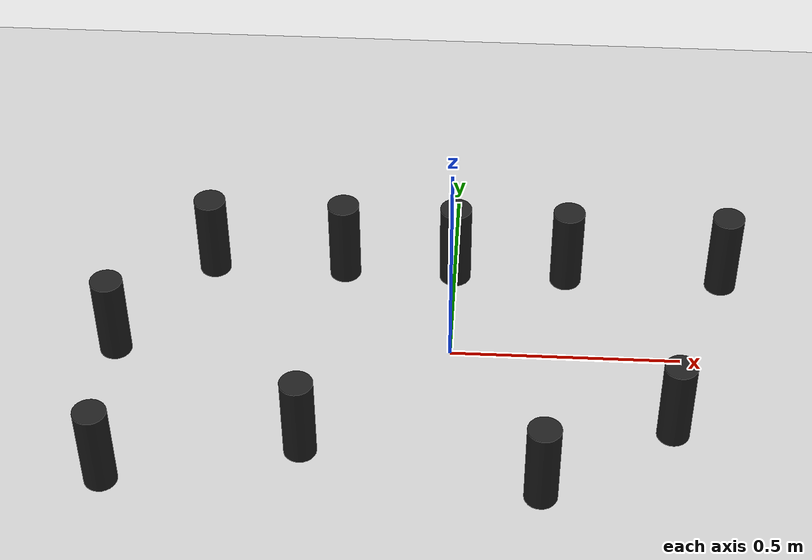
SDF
<sdf version="1.6">
 <world name="default">
  <light name="sun" type="directional">
   <pose>0 0 10 0 -0 0</pose>
   <diffuse>0.8 0.8 0.8 1</diffuse>
   <specular>0.2 0.2 0.2 1</specular>
   <attenuation>
    <range>1000</range>
    <constant>0.9</constant>
    <linear>0.01</linear>
    <quadratic>0.001</quadratic>
   </attenuation>
   <direction>-0.5 0.1 -0.9</direction>
  </light>
  <model name="ground_plane">
   <pose>0.6 -0.25 0 0 -0 0</pose>
   <static>1</static>
   <link name="link">
    <collision name="collision">
     <geometry><plane><normal>0 0 1</normal><size>100 100</size></plane></geometry>
     <surface>
      <contact><collide_bitmask>65535</collide_bitmask></contact>
      <friction><ode><mu>100</mu><mu2>50</mu2></ode></friction>
     </surface>
    </collision>
    <visual name="visual">
     <cast_shadows>0</cast_shadows>
     <geometry><plane><normal>0 0 1</normal><size>100 100</size></plane></geometry>
     <material>
      <script><uri>file://media/materials/scripts/gazebo.material</uri><name>Gazebo/Grey</name></script>
     </material>
    </visual>
   </link>
  </model>
  <gravity>0 0 -9.8</gravity>
  <magnetic_field>6e-06 2.3e-05 -4.2e-05</magnetic_field>
  <atmosphere type="adiabatic"/>
  <physics name="default_physics" default="0" type="ode">
   <max_step_size>0.001</max_step_size>
   <real_time_factor>1</real_time_factor>
   <real_time_update_rate>1000</real_time_update_rate>
  </physics>
  <scene><ambient>0.4 0.4 0.4 1</ambient><background>0.7 0.7 0.7 1</background><shadows>1</shadows></scene>
  <audio><device>default</device></audio>
  <spherical_coordinates>
   <surface_model>EARTH_WGS84</surface_model>
   <latitude_deg>0</latitude_deg>
   <longitude_deg>0</longitude_deg>
   <elevation>0</elevation>
   <heading_deg>0</heading_deg>
  </spherical_coordinates>
  <model name="cylinder">
   <link name="link">
    <inertial>
     <mass>1</mass>
     <inertia><ixx>0.145833</ixx><ixy>0</ixy><ixz>0</ixz><iyy>0.145833</iyy><iyz>0</iyz><izz>0.125</izz></inertia>
    </inertial>
    <visual name="visual">
     <geometry><cylinder><radius>0.035</radius><length>0.2</length></cylinder></geometry>
     <material>
      <script><name>Gazebo/Black</name><uri>file://media/materials/scripts/gazebo.material</uri></script>
      <shader type="vertex"><normal_map>__default__</normal_map></shader>
      <ambient>0.3 0.3 0.3 1</ambient>
      <diffuse>0.7 0.7 0.7 1</diffuse>
      <specular>0.01 0.01 0.01 1</specular>
      <emissive>0 0 0 1</emissive>
     </material>
    </visual>
    <collision name="collision">
     <geometry><cylinder><radius>0.035</radius><length>0.2</length></cylinder></geometry>
     <surface>
      <friction>
       <ode><mu>1</mu><mu2>1</mu2><fdir1>0 0 0</fdir1><slip1>0</slip1><slip2>0</slip2></ode>
       <torsional>
        <coefficient>1</coefficient>
        <patch_radius>0</patch_radius>
        <surface_radius>0</surface_radius>
        <use_patch_radius>1</use_patch_radius>
        <ode><slip>0</slip></ode>
       </torsional>
      </friction>
      <bounce><restitution_coefficient>0</restitution_coefficient><threshold>1e+06</threshold></bounce>
      <contact>
       <collide_without_contact>0</collide_without_contact>
       <collide_without_contact_bitmask>1</collide_without_contact_bitmask>
       <collide_bitmask>1</collide_bitmask>
       <ode>
        <soft_cfm>0</soft_cfm>
        <soft_erp>0.2</soft_erp>
        <kp>1e+13</kp>
        <kd>1</kd>
        <max_vel>0.01</max_vel>
        <min_depth>0</min_depth>
       </ode>
       <bullet>
        <split_impulse>1</split_impulse>
        <split_impulse_penetration_threshold>-0.01</split_impulse_penetration_threshold>
        <soft_cfm>0</soft_cfm>
        <soft_erp>0.2</soft_erp>
        <kp>1e+13</kp>
        <kd>1</kd>
       </bullet>
      </contact>
     </surface>
    </collision>
   </link>
   <static>1</static>
   <pose>0 0.25 0.1 0 -0 0</pose>
  </model>
  <model name="cylinder_clone">
   <link name="link">
    <inertial>
     <mass>1</mass>
     <inertia><ixx>0.145833</ixx><ixy>0</ixy><ixz>0</ixz><iyy>0.145833</iyy><iyz>0</iyz><izz>0.125</izz></inertia>
    </inertial>
    <visual name="visual">
     <geometry><cylinder><radius>0.035</radius><length>0.2</length></cylinder></geometry>
     <material>
      <script><name>Gazebo/Black</name><uri>file://media/materials/scripts/gazebo.material</uri></script>
      <shader type="vertex"><normal_map>__default__</normal_map></shader>
      <ambient>0.3 0.3 0.3 1</ambient>
      <diffuse>0.7 0.7 0.7 1</diffuse>
      <specular>0.01 0.01 0.01 1</specular>
      <emissive>0 0 0 1</emissive>
     </material>
    </visual>
    <collision name="collision">
     <geometry><cylinder><radius>0.035</radius><length>0.2</length></cylinder></geometry>
     <surface>
      <friction>
       <ode><mu>1</mu><mu2>1</mu2><fdir1>0 0 0</fdir1><slip1>0</slip1><slip2>0</slip2></ode>
       <torsional>
        <coefficient>1</coefficient>
        <patch_radius>0</patch_radius>
        <surface_radius>0</surface_radius>
        <use_patch_radius>1</use_patch_radius>
        <ode><slip>0</slip></ode>
       </torsional>
      </friction>
      <bounce><restitution_coefficient>0</restitution_coefficient><threshold>1e+06</threshold></bounce>
      <contact>
       <collide_without_contact>0</collide_without_contact>
       <collide_without_contact_bitmask>1</collide_without_contact_bitmask>
       <collide_bitmask>1</collide_bitmask>
       <ode>
        <soft_cfm>0</soft_cfm>
        <soft_erp>0.2</soft_erp>
        <kp>1e+13</kp>
        <kd>1</kd>
        <max_vel>0.01</max_vel>
        <min_depth>0</min_depth>
       </ode>
       <bullet>
        <split_impulse>1</split_impulse>
        <split_impulse_penetration_threshold>-0.01</split_impulse_penetration_threshold>
        <soft_cfm>0</soft_cfm>
        <soft_erp>0.2</soft_erp>
        <kp>1e+13</kp>
        <kd>1</kd>
       </bullet>
      </contact>
     </surface>
    </collision>
   </link>
   <static>1</static>
   <pose>0.25 0.25 0.1 0 -0 0</pose>
  </model>
  <model name="cylinder_clone_clone">
   <link name="link">
    <inertial>
     <mass>1</mass>
     <inertia><ixx>0.145833</ixx><ixy>0</ixy><ixz>0</ixz><iyy>0.145833</iyy><iyz>0</iyz><izz>0.125</izz></inertia>
    </inertial>
    <visual name="visual">
     <geometry><cylinder><radius>0.035</radius><length>0.2</length></cylinder></geometry>
     <material>
      <script><name>Gazebo/Black</name><uri>file://media/materials/scripts/gazebo.material</uri></script>
      <shader type="vertex"><normal_map>__default__</normal_map></shader>
      <ambient>0.3 0.3 0.3 1</ambient>
      <diffuse>0.7 0.7 0.7 1</diffuse>
      <specular>0.01 0.01 0.01 1</specular>
      <emissive>0 0 0 1</emissive>
     </material>
    </visual>
    <collision name="collision">
     <geometry><cylinder><radius>0.035</radius><length>0.2</length></cylinder></geometry>
     <surface>
      <friction>
       <ode><mu>1</mu><mu2>1</mu2><fdir1>0 0 0</fdir1><slip1>0</slip1><slip2>0</slip2></ode>
       <torsional>
        <coefficient>1</coefficient>
        <patch_radius>0</patch_radius>
        <surface_radius>0</surface_radius>
        <use_patch_radius>1</use_patch_radius>
        <ode><slip>0</slip></ode>
       </torsional>
      </friction>
      <bounce><restitution_coefficient>0</restitution_coefficient><threshold>1e+06</threshold></bounce>
      <contact>
       <collide_without_contact>0</collide_without_contact>
       <collide_without_contact_bitmask>1</collide_without_contact_bitmask>
       <collide_bitmask>1</collide_bitmask>
       <ode>
        <soft_cfm>0</soft_cfm>
        <soft_erp>0.2</soft_erp>
        <kp>1e+13</kp>
        <kd>1</kd>
        <max_vel>0.01</max_vel>
        <min_depth>0</min_depth>
       </ode>
       <bullet>
        <split_impulse>1</split_impulse>
        <split_impulse_penetration_threshold>-0.01</split_impulse_penetration_threshold>
        <soft_cfm>0</soft_cfm>
        <soft_erp>0.2</soft_erp>
        <kp>1e+13</kp>
        <kd>1</kd>
       </bullet>
      </contact>
     </surface>
    </collision>
   </link>
   <static>1</static>
   <pose>-0.25 0.25 0.1 0 -0 0</pose>
  </model>
  <model name="cylinder_clone_0_clone_clone_clone_clone">
   <link name="link">
    <inertial>
     <mass>1</mass>
     <inertia><ixx>0.145833</ixx><ixy>0</ixy><ixz>0</ixz><iyy>0.145833</iyy><iyz>0</iyz><izz>0.125</izz></inertia>
    </inertial>
    <visual name="visual">
     <geometry><cylinder><radius>0.035</radius><length>0.2</length></cylinder></geometry>
     <material>
      <script><name>Gazebo/Black</name><uri>file://media/materials/scripts/gazebo.material</uri></script>
      <shader type="vertex"><normal_map>__default__</normal_map></shader>
      <ambient>0.3 0.3 0.3 1</ambient>
      <diffuse>0.7 0.7 0.7 1</diffuse>
      <specular>0.01 0.01 0.01 1</specular>
      <emissive>0 0 0 1</emissive>
     </material>
    </visual>
    <collision name="collision">
     <geometry><cylinder><radius>0.035</radius><length>0.2</length></cylinder></geometry>
     <surface>
      <friction>
       <ode><mu>1</mu><mu2>1</mu2><fdir1>0 0 0</fdir1><slip1>0</slip1><slip2>0</slip2></ode>
       <torsional>
        <coefficient>1</coefficient>
        <patch_radius>0</patch_radius>
        <surface_radius>0</surface_radius>
        <use_patch_radius>1</use_patch_radius>
        <ode><slip>0</slip></ode>
       </torsional>
      </friction>
      <bounce><restitution_coefficient>0</restitution_coefficient><threshold>1e+06</threshold></bounce>
      <contact>
       <collide_without_contact>0</collide_without_contact>
       <collide_without_contact_bitmask>1</collide_without_contact_bitmask>
       <collide_bitmask>1</collide_bitmask>
       <ode>
        <soft_cfm>0</soft_cfm>
        <soft_erp>0.2</soft_erp>
        <kp>1e+13</kp>
        <kd>1</kd>
        <max_vel>0.01</max_vel>
        <min_depth>0</min_depth>
       </ode>
       <bullet>
        <split_impulse>1</split_impulse>
        <split_impulse_penetration_threshold>-0.01</split_impulse_penetration_threshold>
        <soft_cfm>0</soft_cfm>
        <soft_erp>0.2</soft_erp>
        <kp>1e+13</kp>
        <kd>1</kd>
       </bullet>
      </contact>
     </surface>
    </collision>
   </link>
   <static>1</static>
   <pose>-0.548001 0.25139 0.1 0 -0 0</pose>
  </model>
  <model name="cylinder_clone_clone_0">
   <link name="link">
    <inertial>
     <mass>1</mass>
     <inertia><ixx>0.145833</ixx><ixy>0</ixy><ixz>0</ixz><iyy>0.145833</iyy><iyz>0</iyz><izz>0.125</izz></inertia>
    </inertial>
    <visual name="visual">
     <geometry><cylinder><radius>0.035</radius><length>0.2</length></cylinder></geometry>
     <material>
      <script><name>Gazebo/Black</name><uri>file://media/materials/scripts/gazebo.material</uri></script>
      <shader type="vertex"><normal_map>__default__</normal_map></shader>
      <ambient>0.3 0.3 0.3 1</ambient>
      <diffuse>0.7 0.7 0.7 1</diffuse>
      <specular>0.01 0.01 0.01 1</specular>
      <emissive>0 0 0 1</emissive>
     </material>
    </visual>
    <collision name="collision">
     <geometry><cylinder><radius>0.035</radius><length>0.2</length></cylinder></geometry>
     <surface>
      <friction>
       <ode><mu>1</mu><mu2>1</mu2><fdir1>0 0 0</fdir1><slip1>0</slip1><slip2>0</slip2></ode>
       <torsional>
        <coefficient>1</coefficient>
        <patch_radius>0</patch_radius>
        <surface_radius>0</surface_radius>
        <use_patch_radius>1</use_patch_radius>
        <ode><slip>0</slip></ode>
       </torsional>
      </friction>
      <bounce><restitution_coefficient>0</restitution_coefficient><threshold>1e+06</threshold></bounce>
      <contact>
       <collide_without_contact>0</collide_without_contact>
       <collide_without_contact_bitmask>1</collide_without_contact_bitmask>
       <collide_bitmask>1</collide_bitmask>
       <ode>
        <soft_cfm>0</soft_cfm>
        <soft_erp>0.2</soft_erp>
        <kp>1e+13</kp>
        <kd>1</kd>
        <max_vel>0.01</max_vel>
        <min_depth>0</min_depth>
       </ode>
       <bullet>
        <split_impulse>1</split_impulse>
        <split_impulse_penetration_threshold>-0.01</split_impulse_penetration_threshold>
        <soft_cfm>0</soft_cfm>
        <soft_erp>0.2</soft_erp>
        <kp>1e+13</kp>
        <kd>1</kd>
       </bullet>
      </contact>
     </surface>
    </collision>
   </link>
   <static>1</static>
   <pose>0.6 0.25 0.1 0 -0 0</pose>
  </model>
  <model name="cylinder_clone_clone_clone">
   <link name="link">
    <inertial>
     <mass>1</mass>
     <inertia><ixx>0.145833</ixx><ixy>0</ixy><ixz>0</ixz><iyy>0.145833</iyy><iyz>0</iyz><izz>0.125</izz></inertia>
    </inertial>
    <visual name="visual">
     <geometry><cylinder><radius>0.035</radius><length>0.2</length></cylinder></geometry>
     <material>
      <script><name>Gazebo/Black</name><uri>file://media/materials/scripts/gazebo.material</uri></script>
      <shader type="vertex"><normal_map>__default__</normal_map></shader>
      <ambient>0.3 0.3 0.3 1</ambient>
      <diffuse>0.7 0.7 0.7 1</diffuse>
      <specular>0.01 0.01 0.01 1</specular>
      <emissive>0 0 0 1</emissive>
     </material>
    </visual>
    <collision name="collision">
     <geometry><cylinder><radius>0.035</radius><length>0.2</length></cylinder></geometry>
     <surface>
      <friction>
       <ode><mu>1</mu><mu2>1</mu2><fdir1>0 0 0</fdir1><slip1>0</slip1><slip2>0</slip2></ode>
       <torsional>
        <coefficient>1</coefficient>
        <patch_radius>0</patch_radius>
        <surface_radius>0</surface_radius>
        <use_patch_radius>1</use_patch_radius>
        <ode><slip>0</slip></ode>
       </torsional>
      </friction>
      <bounce><restitution_coefficient>0</restitution_coefficient><threshold>1e+06</threshold></bounce>
      <contact>
       <collide_without_contact>0</collide_without_contact>
       <collide_without_contact_bitmask>1</collide_without_contact_bitmask>
       <collide_bitmask>1</collide_bitmask>
       <ode>
        <soft_cfm>0</soft_cfm>
        <soft_erp>0.2</soft_erp>
        <kp>1e+13</kp>
        <kd>1</kd>
        <max_vel>0.01</max_vel>
        <min_depth>0</min_depth>
       </ode>
       <bullet>
        <split_impulse>1</split_impulse>
        <split_impulse_penetration_threshold>-0.01</split_impulse_penetration_threshold>
        <soft_cfm>0</soft_cfm>
        <soft_erp>0.2</soft_erp>
        <kp>1e+13</kp>
        <kd>1</kd>
       </bullet>
      </contact>
     </surface>
    </collision>
   </link>
   <static>1</static>
   <pose>-0.7 -0.4 0.1 0 -0 0</pose>
  </model>
  <model name="cylinder_clone_clone_clone_clone">
   <link name="link">
    <inertial>
     <mass>1</mass>
     <inertia><ixx>0.145833</ixx><ixy>0</ixy><ixz>0</ixz><iyy>0.145833</iyy><iyz>0</iyz><izz>0.125</izz></inertia>
    </inertial>
    <visual name="visual">
     <geometry><cylinder><radius>0.035</radius><length>0.2</length></cylinder></geometry>
     <material>
      <script><name>Gazebo/Black</name><uri>file://media/materials/scripts/gazebo.material</uri></script>
      <shader type="vertex"><normal_map>__default__</normal_map></shader>
      <ambient>0.3 0.3 0.3 1</ambient>
      <diffuse>0.7 0.7 0.7 1</diffuse>
      <specular>0.01 0.01 0.01 1</specular>
      <emissive>0 0 0 1</emissive>
     </material>
    </visual>
    <collision name="collision">
     <geometry><cylinder><radius>0.035</radius><length>0.2</length></cylinder></geometry>
     <surface>
      <friction>
       <ode><mu>1</mu><mu2>1</mu2><fdir1>0 0 0</fdir1><slip1>0</slip1><slip2>0</slip2></ode>
       <torsional>
        <coefficient>1</coefficient>
        <patch_radius>0</patch_radius>
        <surface_radius>0</surface_radius>
        <use_patch_radius>1</use_patch_radius>
        <ode><slip>0</slip></ode>
       </torsional>
      </friction>
      <bounce><restitution_coefficient>0</restitution_coefficient><threshold>1e+06</threshold></bounce>
      <contact>
       <collide_without_contact>0</collide_without_contact>
       <collide_without_contact_bitmask>1</collide_without_contact_bitmask>
       <collide_bitmask>1</collide_bitmask>
       <ode>
        <soft_cfm>0</soft_cfm>
        <soft_erp>0.2</soft_erp>
        <kp>1e+13</kp>
        <kd>1</kd>
        <max_vel>0.01</max_vel>
        <min_depth>0</min_depth>
       </ode>
       <bullet>
        <split_impulse>1</split_impulse>
        <split_impulse_penetration_threshold>-0.01</split_impulse_penetration_threshold>
        <soft_cfm>0</soft_cfm>
        <soft_erp>0.2</soft_erp>
        <kp>1e+13</kp>
        <kd>1</kd>
       </bullet>
      </contact>
     </surface>
    </collision>
   </link>
   <static>1</static>
   <pose>-0.3 -0.3 0.1 0 -0 0</pose>
  </model>
  <model name="cylinder_clone_clone_clone_clone_clone">
   <link name="link">
    <inertial>
     <mass>1</mass>
     <inertia><ixx>0.145833</ixx><ixy>0</ixy><ixz>0</ixz><iyy>0.145833</iyy><iyz>0</iyz><izz>0.125</izz></inertia>
    </inertial>
    <visual name="visual">
     <geometry><cylinder><radius>0.035</radius><length>0.2</length></cylinder></geometry>
     <material>
      <script><name>Gazebo/Black</name><uri>file://media/materials/scripts/gazebo.material</uri></script>
      <shader type="vertex"><normal_map>__default__</normal_map></shader>
      <ambient>0.3 0.3 0.3 1</ambient>
      <diffuse>0.7 0.7 0.7 1</diffuse>
      <specular>0.01 0.01 0.01 1</specular>
      <emissive>0 0 0 1</emissive>
     </material>
    </visual>
    <collision name="collision">
     <geometry><cylinder><radius>0.035</radius><length>0.2</length></cylinder></geometry>
     <surface>
      <friction>
       <ode><mu>1</mu><mu2>1</mu2><fdir1>0 0 0</fdir1><slip1>0</slip1><slip2>0</slip2></ode>
       <torsional>
        <coefficient>1</coefficient>
        <patch_radius>0</patch_radius>
        <surface_radius>0</surface_radius>
        <use_patch_radius>1</use_patch_radius>
        <ode><slip>0</slip></ode>
       </torsional>
      </friction>
      <bounce><restitution_coefficient>0</restitution_coefficient><threshold>1e+06</threshold></bounce>
      <contact>
       <collide_without_contact>0</collide_without_contact>
       <collide_without_contact_bitmask>1</collide_without_contact_bitmask>
       <collide_bitmask>1</collide_bitmask>
       <ode>
        <soft_cfm>0</soft_cfm>
        <soft_erp>0.2</soft_erp>
        <kp>1e+13</kp>
        <kd>1</kd>
        <max_vel>0.01</max_vel>
        <min_depth>0</min_depth>
       </ode>
       <bullet>
        <split_impulse>1</split_impulse>
        <split_impulse_penetration_threshold>-0.01</split_impulse_penetration_threshold>
        <soft_cfm>0</soft_cfm>
        <soft_erp>0.2</soft_erp>
        <kp>1e+13</kp>
        <kd>1</kd>
       </bullet>
      </contact>
     </surface>
    </collision>
   </link>
   <static>1</static>
   <pose>0.2 -0.4 0.1 0 -0 0</pose>
  </model>
  <model name="cylinder_clone_clone_clone_clone_clone_clone">
   <link name="link">
    <inertial>
     <mass>1</mass>
     <inertia><ixx>0.145833</ixx><ixy>0</ixy><ixz>0</ixz><iyy>0.145833</iyy><iyz>0</iyz><izz>0.125</izz></inertia>
    </inertial>
    <visual name="visual">
     <geometry><cylinder><radius>0.035</radius><length>0.2</length></cylinder></geometry>
     <material>
      <script><name>Gazebo/Black</name><uri>file://media/materials/scripts/gazebo.material</uri></script>
      <shader type="vertex"><normal_map>__default__</normal_map></shader>
      <ambient>0.3 0.3 0.3 1</ambient>
      <diffuse>0.7 0.7 0.7 1</diffuse>
      <specular>0.01 0.01 0.01 1</specular>
      <emissive>0 0 0 1</emissive>
     </material>
    </visual>
    <collision name="collision">
     <geometry><cylinder><radius>0.035</radius><length>0.2</length></cylinder></geometry>
     <surface>
      <friction>
       <ode><mu>1</mu><mu2>1</mu2><fdir1>0 0 0</fdir1><slip1>0</slip1><slip2>0</slip2></ode>
       <torsional>
        <coefficient>1</coefficient>
        <patch_radius>0</patch_radius>
        <surface_radius>0</surface_radius>
        <use_patch_radius>1</use_patch_radius>
        <ode><slip>0</slip></ode>
       </torsional>
      </friction>
      <bounce><restitution_coefficient>0</restitution_coefficient><threshold>1e+06</threshold></bounce>
      <contact>
       <collide_without_contact>0</collide_without_contact>
       <collide_without_contact_bitmask>1</collide_without_contact_bitmask>
       <collide_bitmask>1</collide_bitmask>
       <ode>
        <soft_cfm>0</soft_cfm>
        <soft_erp>0.2</soft_erp>
        <kp>1e+13</kp>
        <kd>1</kd>
        <max_vel>0.01</max_vel>
        <min_depth>0</min_depth>
       </ode>
       <bullet>
        <split_impulse>1</split_impulse>
        <split_impulse_penetration_threshold>-0.01</split_impulse_penetration_threshold>
        <soft_cfm>0</soft_cfm>
        <soft_erp>0.2</soft_erp>
        <kp>1e+13</kp>
        <kd>1</kd>
       </bullet>
      </contact>
     </surface>
    </collision>
   </link>
   <static>1</static>
   <pose>0.475344 -0.214316 0.1 0 -0 0</pose>
  </model>
  <model name="cylinder_clone_clone_clone_clone_0">
   <link name="link">
    <inertial>
     <mass>1</mass>
     <inertia><ixx>0.145833</ixx><ixy>0</ixy><ixz>0</ixz><iyy>0.145833</iyy><iyz>0</iyz><izz>0.125</izz></inertia>
    </inertial>
    <visual name="visual">
     <geometry><cylinder><radius>0.035</radius><length>0.2</length></cylinder></geometry>
     <material>
      <script><name>Gazebo/Black</name><uri>file://media/materials/scripts/gazebo.material</uri></script>
      <shader type="vertex"><normal_map>__default__</normal_map></shader>
      <ambient>0.3 0.3 0.3 1</ambient>
      <diffuse>0.7 0.7 0.7 1</diffuse>
      <specular>0.01 0.01 0.01 1</specular>
      <emissive>0 0 0 1</emissive>
     </material>
    </visual>
    <collision name="collision">
     <geometry><cylinder><radius>0.035</radius><length>0.2</length></cylinder></geometry>
     <surface>
      <friction>
       <ode><mu>1</mu><mu2>1</mu2><fdir1>0 0 0</fdir1><slip1>0</slip1><slip2>0</slip2></ode>
       <torsional>
        <coefficient>1</coefficient>
        <patch_radius>0</patch_radius>
        <surface_radius>0</surface_radius>
        <use_patch_radius>1</use_patch_radius>
        <ode><slip>0</slip></ode>
       </torsional>
      </friction>
      <bounce><restitution_coefficient>0</restitution_coefficient><threshold>1e+06</threshold></bounce>
      <contact>
       <collide_without_contact>0</collide_without_contact>
       <collide_without_contact_bitmask>1</collide_without_contact_bitmask>
       <collide_bitmask>1</collide_bitmask>
       <ode>
        <soft_cfm>0</soft_cfm>
        <soft_erp>0.2</soft_erp>
        <kp>1e+13</kp>
        <kd>1</kd>
        <max_vel>0.01</max_vel>
        <min_depth>0</min_depth>
       </ode>
       <bullet>
        <split_impulse>1</split_impulse>
        <split_impulse_penetration_threshold>-0.01</split_impulse_penetration_threshold>
        <soft_cfm>0</soft_cfm>
        <soft_erp>0.2</soft_erp>
        <kp>1e+13</kp>
        <kd>1</kd>
       </bullet>
      </contact>
     </surface>
    </collision>
   </link>
   <static>1</static>
   <pose>-0.732316 -0.02168 0.1 0 -0 0</pose>
  </model>
 </world>
</sdf>
